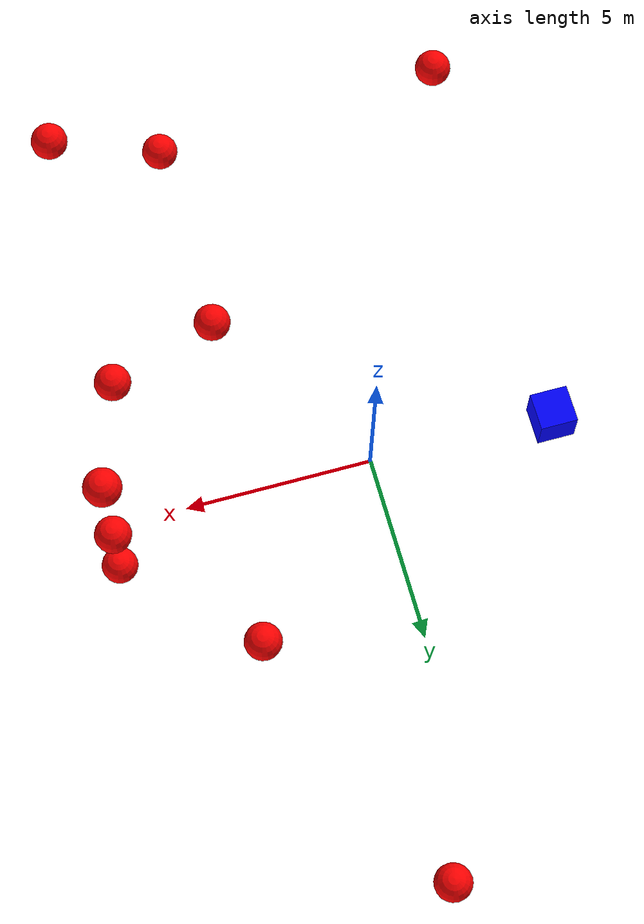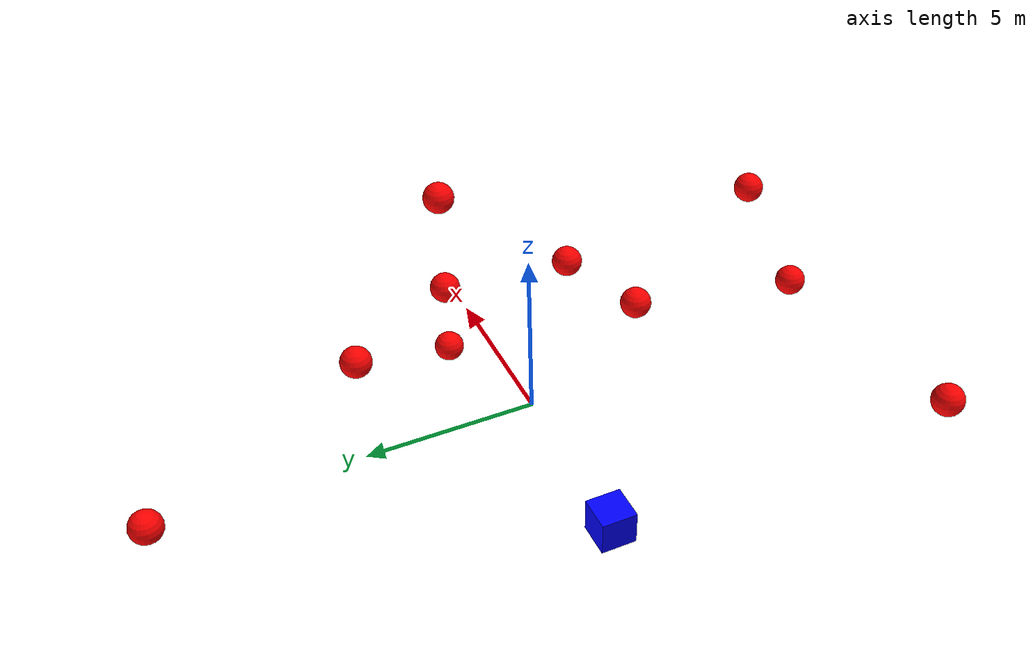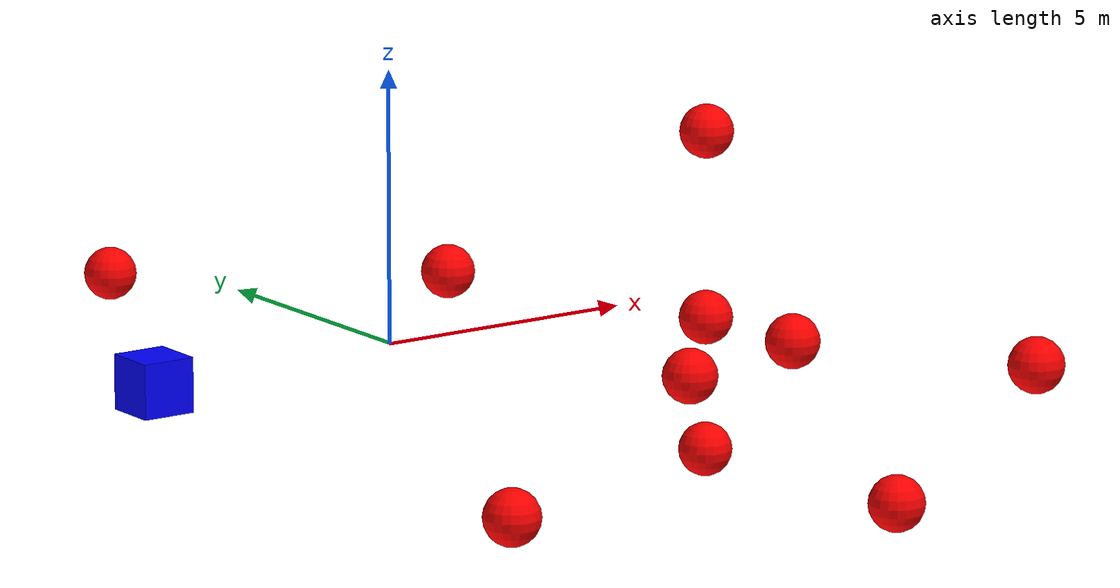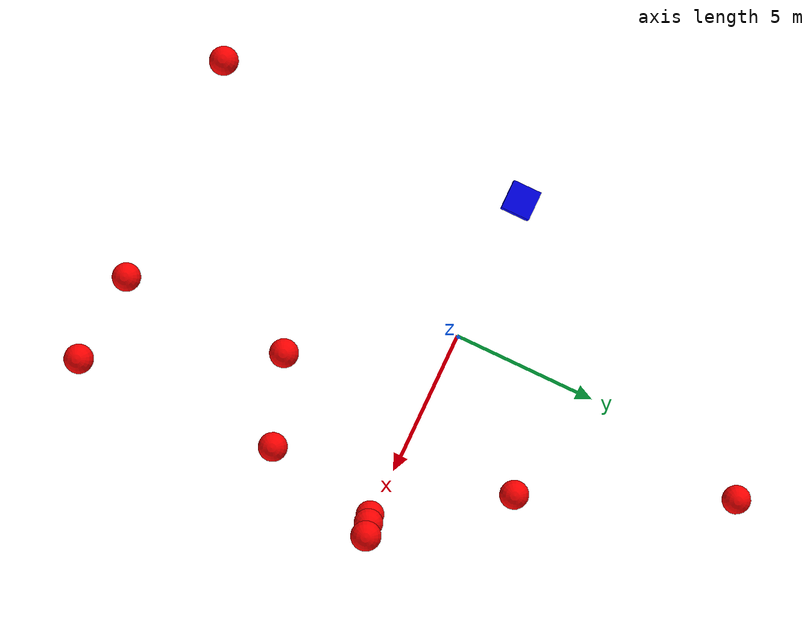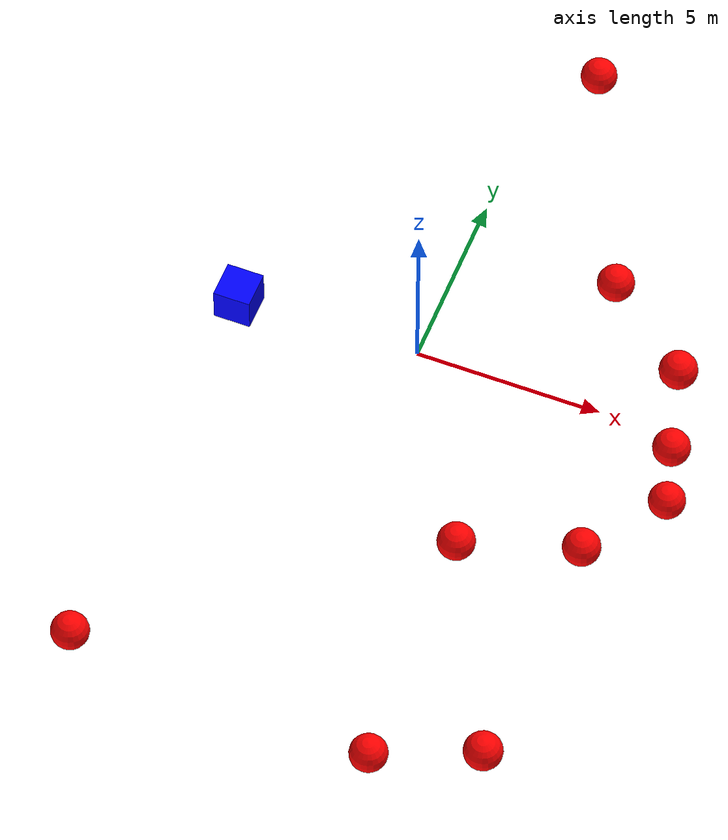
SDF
<?xml version="1.0" ?>
<sdf version="1.8">
<world name="3d_world">

  <physics name="1ms" type="ode">
    <max_step_size>0.001</max_step_size>
    <real_time_factor>1.0</real_time_factor>
    <real_time_update_rate>1000.0</real_time_update_rate>
  </physics>
  <gravity>0 0 0</gravity>

  <plugin filename="gz-sim-physics-system" name="gz::sim::v8::systems::Physics"/>
  <plugin filename="libignition-gazebo-user-commands-system.so" name="ignition::gazebo::systems::UserCommands"/>
  <plugin filename="gz-sim-scene-broadcaster-system" name="gz::sim::systems::SceneBroadcaster"/>
  <plugin filename="gz-sim-sensors-system" name="gz::sim::systems::Sensors">
    <render_engine>ogre2</render_engine>
  </plugin>

  <light type="directional" name="sun">
    <cast_shadows>true</cast_shadows>
    <pose>0 0 10 0 0 0</pose>
    <diffuse>0.8 0.8 0.8 1</diffuse>
    <specular>0.2 0.2 0.2 1</specular>
    <direction>-0.5 0.1 -0.9</direction>
  </light>

  <!-- Agent -->
  <model name='agente' canonical_link='chassis'>
    <pose relative_to='world'>-5.0 0 0.0 0 0 0</pose>
    <link name='chassis'>
      <inertial>
        <mass>1.14395</mass>
        <inertia>
          <ixx>0.095329</ixx>
          <iyy>0.381317</iyy>
          <izz>0.476646</izz>
        </inertia>
      </inertial>
      <visual name='visual'>
        <geometry><box><size>1.0 1.0 1.0</size></box></geometry>
        <material>
          <ambient>0.0 0.0 1.0 1</ambient>
          <diffuse>0.0 0.0 1.0 1</diffuse>
          <specular>0.0 0.0 1.0 1</specular>
        </material>
      </visual>
      <collision name='collision'><geometry><box><size>1.0 1.0 1.0</size></box></geometry></collision>
      <enable_gravity>false</enable_gravity>
    </link>
    <plugin filename="ignition-gazebo-velocity-control-system" name="ignition::gazebo::systems::VelocityControl">
      <initial_linear>0.0 0 0</initial_linear>
      <initial_angular>0 0 0.0</initial_angular>
    </plugin>
    <plugin filename="ignition-gazebo-odometry-publisher-system" name="ignition::gazebo::systems::OdometryPublisher">
      <dimensions>3</dimensions>
    </plugin>
    <plugin filename="libignition-gazebo-pose-publisher-system.so" name="ignition::gazebo::systems::PosePublisher">
      <topic>/agente/pose</topic>
      <frame_id>agente</frame_id>
      <update_rate>30</update_rate>
    </plugin>
  </model>

  <!-- Obstacles -->
  <!-- Moving toward X-axis -->
  <!-- Static obstacle_1 -->
  <model name='obstacle_1' canonical_link='obstacle'>
    <static>true</static>
    <pose relative_to='world'>4 4 0 0 0 0</pose>
    <link name='obstacle'>
      <visual name='visual'>
        <geometry><sphere><radius>0.5</radius></sphere></geometry>
        <material>
          <ambient>1.0 0.0 0.0 1</ambient>
          <diffuse>1.0 0.0 0.0 1</diffuse>
          <specular>1.0 0.0 0.0 1</specular>
        </material>
      </visual>
      <collision name='collision'><geometry><sphere><radius>0.5</radius></sphere></geometry></collision>
      <enable_gravity>false</enable_gravity>
    </link>
    <plugin filename="ignition-gazebo-velocity-control-system" name="ignition::gazebo::systems::VelocityControl">
      <initial_linear>0 0 0</initial_linear>
      <initial_angular>0 0 0</initial_angular>
    </plugin>
    <plugin filename="ignition-gazebo-odometry-publisher-system" name="ignition::gazebo::systems::OdometryPublisher">
      <dimensions>3</dimensions>
    </plugin>
  </model>

  <!-- Static obstacle_2 -->
  <model name='obstacle_2' canonical_link='obstacle'>
    <static>true</static>
    <pose relative_to='world'>3 -5 0 0 0 0</pose>
    <link name='obstacle'>
      <visual name='visual'>
        <geometry><sphere><radius>0.5</radius></sphere></geometry>
        <material>
          <ambient>1.0 0.0 0.0 1</ambient>
          <diffuse>1.0 0.0 0.0 1</diffuse>
          <specular>1.0 0.0 0.0 1</specular>
        </material>
      </visual>
      <collision name='collision'><geometry><sphere><radius>0.5</radius></sphere></geometry></collision>
      <enable_gravity>false</enable_gravity>
    </link>
    <plugin filename="ignition-gazebo-velocity-control-system" name="ignition::gazebo::systems::VelocityControl">
      <initial_linear>0 0 0</initial_linear>
      <initial_angular>0 0 0</initial_angular>
    </plugin>
    <plugin filename="ignition-gazebo-odometry-publisher-system" name="ignition::gazebo::systems::OdometryPublisher">
      <dimensions>3</dimensions>
    </plugin>
  </model>

  <!-- Static obstacle_3 -->
  <model name='obstacle_3' canonical_link='obstacle'>
    <static>true</static>
    <pose relative_to='world'>6 -4 0 0 0 0</pose>
    <link name='obstacle'>
      <visual name='visual'>
        <geometry><sphere><radius>0.5</radius></sphere></geometry>
        <material>
          <ambient>1.0 0.0 0.0 1</ambient>
          <diffuse>1.0 0.0 0.0 1</diffuse>
          <specular>1.0 0.0 0.0 1</specular>
        </material>
      </visual>
      <collision name='collision'><geometry><sphere><radius>0.5</radius></sphere></geometry></collision>
      <enable_gravity>false</enable_gravity>
    </link>
    <plugin filename="ignition-gazebo-velocity-control-system" name="ignition::gazebo::systems::VelocityControl">
      <initial_linear>0 0 0</initial_linear>
      <initial_angular>0 0 0</initial_angular>
    </plugin>
    <plugin filename="ignition-gazebo-odometry-publisher-system" name="ignition::gazebo::systems::OdometryPublisher">
      <dimensions>3</dimensions>
    </plugin>
  </model>

  <model name='obstacle_4' canonical_link='obstacle'>
    <static>false</static>
    <pose relative_to='world'>1 11 -1 0 0 0</pose>
    <link name='obstacle'>
      <visual name='visual'>
        <geometry><sphere><radius>0.5</radius></sphere></geometry>
        <material><ambient>1.0 0.0 0.0 1</ambient><diffuse>1.0 0.0 0.0 1</diffuse><specular>1.0 0.0 0.0 1</specular></material>
      </visual>
      <collision name='collision'><geometry><sphere><radius>0.5</radius></sphere></geometry></collision>
      <enable_gravity>false</enable_gravity>
    </link>
    <plugin filename="ignition-gazebo-velocity-control-system" name="ignition::gazebo::systems::VelocityControl">
      <initial_linear>0.0 -1.0 0.0</initial_linear>
      <initial_angular>0 0 0.0</initial_angular>
    </plugin>
    <plugin filename="ignition-gazebo-odometry-publisher-system" name="ignition::gazebo::systems::OdometryPublisher"><dimensions>3</dimensions></plugin>
  </model>

  <!-- Static center -->
  <model name='obstacle_5' canonical_link='obstacle'>
    <static>true</static>
    <pose relative_to='world'>7 0 -0.5 0 0 0</pose>
    <link name='obstacle'>
      <visual name='visual'>
        <geometry><sphere><radius>0.5</radius></sphere></geometry>
        <material><ambient>1.0 0.0 0.0 1</ambient><diffuse>1.0 0.0 0.0 1</diffuse><specular>1.0 0.0 0.0 1</specular></material>
      </visual>
      <collision name='collision'><geometry><sphere><radius>0.5</radius></sphere></geometry></collision>
      <enable_gravity>false</enable_gravity>
    </link>
    <plugin filename="ignition-gazebo-velocity-control-system" name="ignition::gazebo::systems::VelocityControl">
      <initial_linear>0 0 0</initial_linear>
      <initial_angular>0 0 0</initial_angular>
    </plugin>
    <plugin filename="ignition-gazebo-odometry-publisher-system" name="ignition::gazebo::systems::OdometryPublisher"><dimensions>3</dimensions></plugin>
  </model>

  <model name='obstacle_6' canonical_link='obstacle'>
    <static>false</static>
    <pose relative_to='world'>6 -11 1 0 0 0</pose>
    <link name='obstacle'>
      <visual name='visual'>
        <geometry><sphere><radius>0.5</radius></sphere></geometry>
        <material><ambient>1.0 0.0 0.0 1</ambient><diffuse>1.0 0.0 0.0 1</diffuse><specular>1.0 0.0 0.0 1</specular></material>
      </visual>
      <collision name='collision'><geometry><sphere><radius>0.5</radius></sphere></geometry></collision>
      <enable_gravity>false</enable_gravity>
    </link>
    <plugin filename="ignition-gazebo-velocity-control-system" name="ignition::gazebo::systems::VelocityControl">
      <initial_linear>0.0 1.0 0.0</initial_linear>
      <initial_angular>0 0 0.0</initial_angular>
    </plugin>
    <plugin filename="ignition-gazebo-odometry-publisher-system" name="ignition::gazebo::systems::OdometryPublisher"><dimensions>3</dimensions></plugin>
  </model>

  <model name='obstacle_7' canonical_link='obstacle'>
    <static>false</static>
    <pose relative_to='world'>3 -11 -1 0 0 0</pose>
    <link name='obstacle'>
      <visual name='visual'>
        <geometry><sphere><radius>0.5</radius></sphere></geometry>
        <material><ambient>1.0 0.0 0.0 1</ambient><diffuse>1.0 0.0 0.0 1</diffuse><specular>1.0 0.0 0.0 1</specular></material>
      </visual>
      <collision name='collision'><geometry><sphere><radius>0.5</radius></sphere></geometry></collision>
      <enable_gravity>false</enable_gravity>
    </link>
    <plugin filename="ignition-gazebo-velocity-control-system" name="ignition::gazebo::systems::VelocityControl">
      <initial_linear>0.0 1.0 0.0</initial_linear>
      <initial_angular>0 0 0.0</initial_angular>
    </plugin>
    <plugin filename="ignition-gazebo-odometry-publisher-system" name="ignition::gazebo::systems::OdometryPublisher"><dimensions>3</dimensions></plugin>
  </model>

  <model name='obstacle_8' canonical_link='obstacle'>
    <static>false</static>
    <pose relative_to='world'>7 0 3 0 0 0</pose>
    <link name='obstacle'>
      <visual name='visual'>s
        <geometry><sphere><radius>0.5</radius></sphere></geometry>
        <material><ambient>1.0 0.0 0.0 1</ambient><diffuse>1.0 0.0 0.0 1</diffuse><specular>1.0 0.0 0.0 1</specular></material>
      </visual>
      <collision name='collision'><geometry><sphere><radius>0.5</radius></sphere></geometry></collision>
      <enable_gravity>false</enable_gravity>
    </link>
    <plugin filename="ignition-gazebo-velocity-control-system" name="ignition::gazebo::systems::VelocityControl">
      <initial_linear>0.0 0.0 0.0</initial_linear>
      <initial_angular>0 0 0.0</initial_angular>
    </plugin>
    <plugin filename="ignition-gazebo-odometry-publisher-system" name="ignition::gazebo::systems::OdometryPublisher"><dimensions>3</dimensions></plugin>
  </model>

  <model name='obstacle_9' canonical_link='obstacle'>
    <static>false</static>
    <pose relative_to='world'>-5 -11 0 0 0 0</pose>
    <link name='obstacle'>
      <visual name='visual'>
        <geometry><sphere><radius>0.5</radius></sphere></geometry>
        <material><ambient>1.0 0.0 0.0 1</ambient><diffuse>1.0 0.0 0.0 1</diffuse><specular>1.0 0.0 0.0 1</specular></material>
      </visual>
      <collision name='collision'><geometry><sphere><radius>0.5</radius></sphere></geometry></collision>
      <enable_gravity>false</enable_gravity>
    </link>
    <plugin filename="ignition-gazebo-velocity-control-system" name="ignition::gazebo::systems::VelocityControl">
      <initial_linear>0.0 1.0 0.0</initial_linear>
      <initial_angular>0 0 0.0</initial_angular>
    </plugin>
    <plugin filename="ignition-gazebo-odometry-publisher-system" name="ignition::gazebo::systems::OdometryPublisher"><dimensions>3</dimensions></plugin>
  </model>

  <model name='obstacle_10' canonical_link='obstacle'>
    <static>false</static>
    <pose relative_to='world'>7 0 -3 0 0 0</pose>
    <link name='obstacle'>
      <visual name='visual'>
        <geometry><sphere><radius>0.5</radius></sphere></geometry>
        <material><ambient>1.0 0.0 0.0 1</ambient><diffuse>1.0 0.0 0.0 1</diffuse><specular>1.0 0.0 0.0 1</specular></material>
      </visual>
      <collision name='collision'><geometry><sphere><radius>0.5</radius></sphere></geometry></collision>
      <enable_gravity>false</enable_gravity>
    </link>
    <plugin filename="ignition-gazebo-velocity-control-system" name="ignition::gazebo::systems::VelocityControl">
      <initial_linear>0.0 0.0 0.0</initial_linear>
      <initial_angular>0 0 0.0</initial_angular>
    </plugin>
    <plugin filename="ignition-gazebo-odometry-publisher-system" name="ignition::gazebo::systems::OdometryPublisher"><dimensions>3</dimensions></plugin>
  </model>

</world>
</sdf>
